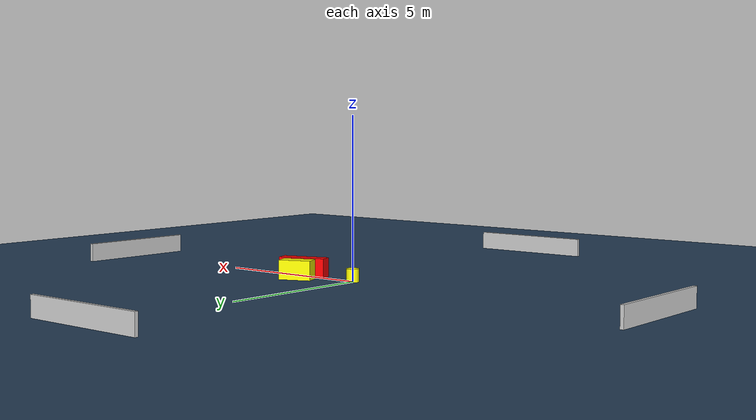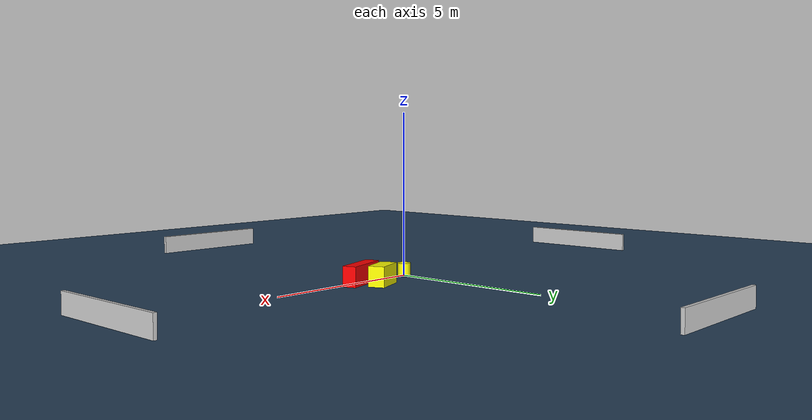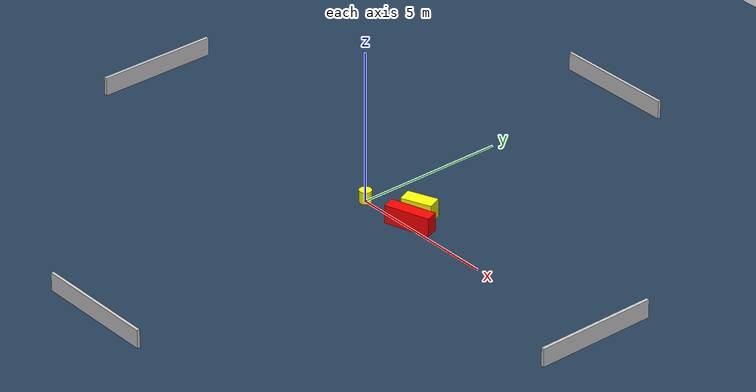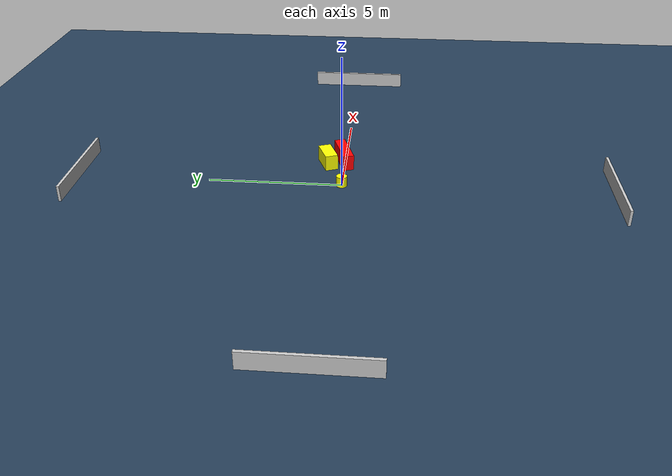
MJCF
<?xml version="1.0" ?>
<mujoco model="generated_environment">
  <option timestep="0.01" integrator="RK4" cone="elliptic"/>
  <default>
    <geom density="1"/>
  </default>
  <asset>
    <texture builtin="gradient" height="3072" name="skybox" rgb1="0.3 0.5 0.7" rgb2="0 0 0" type="skybox" width="512"/>
    <texture builtin="checker" height="300" name="groundplane" rgb1="0.2 0.3 0.4" rgb2="0.1 0.2 0.3" type="2d" width="300"/>
    <material name="groundplane" reflectance="0.2" texrepeat="5 5" texture="groundplane"/>
  </asset>
  <worldbody>
    <light dir="0 0 -1" directional="true" pos="0 0 1.5"/>
    <geom condim="3" friction="0.5 0.005 0.001" material="groundplane" name="floor" pos="0 0 0" size="0 0 0.05" type="plane"/>
    <body name="walls">
      <geom name="wall_1" condim="4" pos="-10.0 0.0 0.3" rgba="0.800000011920929 0.800000011920929 0.800000011920929 1.0" size="0.05 2.0 0.3" type="box"/>
      <geom name="wall_2" condim="4" pos="10.0 0.0 0.3" rgba="0.800000011920929 0.800000011920929 0.800000011920929 1.0" size="0.05 2.0 0.3" type="box"/>
      <geom name="wall_3" condim="4" pos="0.0 -10.0 0.3" rgba="0.800000011920929 0.800000011920929 0.800000011920929 1.0" size="2.0 0.05 0.3" type="box"/>
      <geom name="wall_4" condim="4" pos="0.0 10.0 0.3" rgba="0.800000011920929 0.800000011920929 0.800000011920929 1.0" size="2.0 0.05 0.3" type="box"/>
    </body>
    <body name="robot">
      <joint name="joint_x" type="slide" pos="0 0 0" axis="1 0 0"/>
      <joint name="joint_y" type="slide" pos="0 0 0" axis="0 1 0"/>
      <geom name="robot" type="cylinder" pos="0.0 0.0 0.2" size="0.2 0.2 0.0" mass="5.0" friction="1.0 0.005 0.0001" condim="4" rgba="1.0 1.0 0.0 1.0"/>
    </body>
    <body name="obstacle_1_movable">
      <geom name="obstacle_1_movable" condim="4" pos="1.6577643973036498 0.6713623824825284 0.3" euler="0 0 201.96969595205482" friction="0.0 0.005 0.001" rgba="1.0 1.0 0.0 1.0" size="0.50450500157543 0.24512267867481888 0.3" type="box" mass="0.1"/>
      <joint type="free"/>
    </body>
    <body name="obstacle_2_static">
      <geom name="obstacle_2_static" condim="4" pos="1.9333492590491053 0.06783484974649423 0.3" euler="0 0 287.97519902824627" friction="0.0 0.005 0.001" rgba="1.0 0.0 0.0 1.0" size="0.20847958231358354 0.7498586608965361 0.3" type="box"/>
    </body>
  </worldbody>
  <actuator>
    <motor name="actuator_x" joint="joint_x" gear="1" ctrlrange="-1 1"/>
    <motor name="actuator_y" joint="joint_y" gear="1" ctrlrange="-1 1"/>
  </actuator>
</mujoco>
